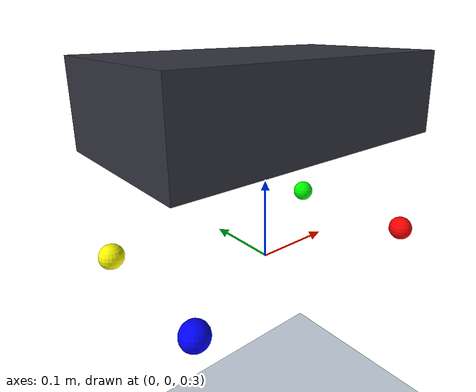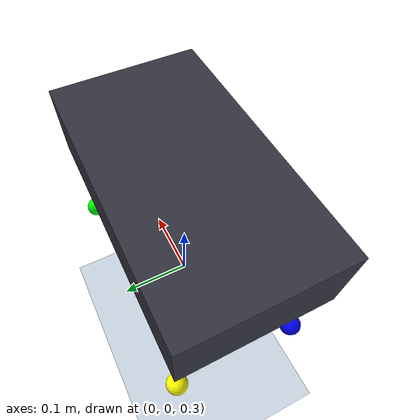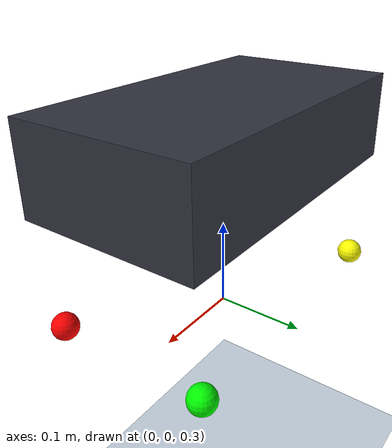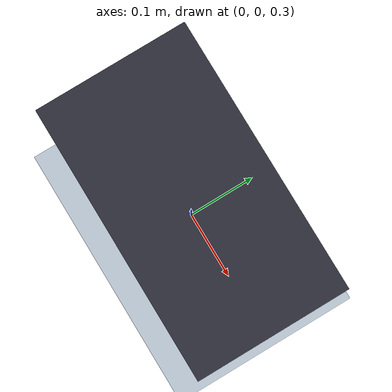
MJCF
<mujoco model="free_body_smoke">
  <compiler angle="radian"/>
  <option timestep="0.002" gravity="0 0 -9.81"/>

  <worldbody>
    <light name="key" pos="0 0 3"/>
    <geom name="floor" type="plane" size="2 2 0.05" rgba="0.8 0.85 0.9 1"/>

    <body name="base" pos="0 0 0.5">
      <freejoint name="root"/>
      <geom name="base_geom" type="box" size="0.18 0.10 0.05" mass="5.0" rgba="0.2 0.2 0.25 1"/>
      <site name="front_right_foot" pos="0.16 -0.09 -0.18" size="0.015" rgba="1 0 0 1"/>
      <site name="front_left_foot"  pos="0.16  0.09 -0.18" size="0.015" rgba="0 1 0 1"/>
      <site name="rear_right_foot"  pos="-0.16 -0.09 -0.18" size="0.015" rgba="0 0 1 1"/>
      <site name="rear_left_foot"   pos="-0.16  0.09 -0.18" size="0.015" rgba="1 1 0 1"/>
    </body>
  </worldbody>
</mujoco>
